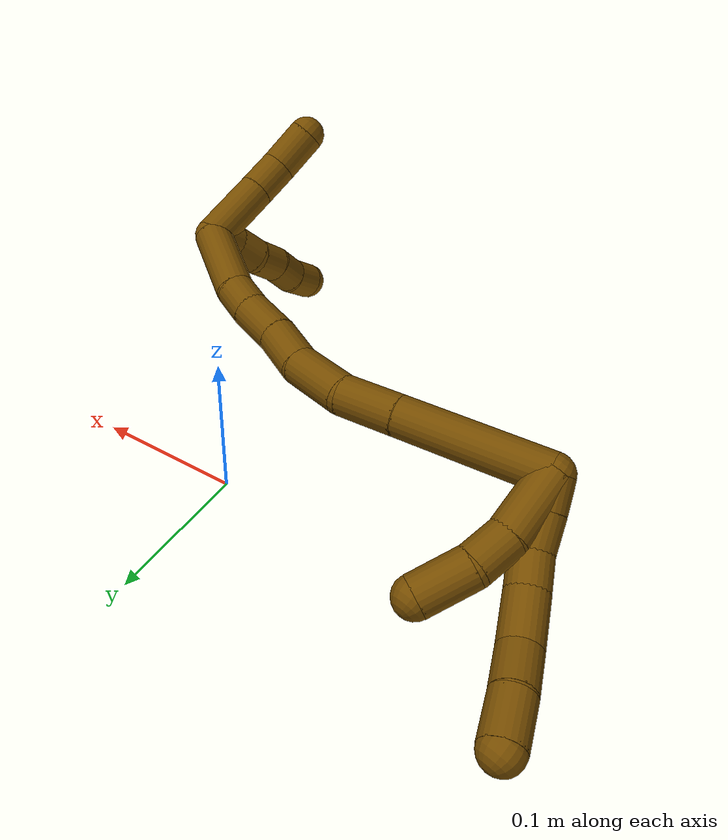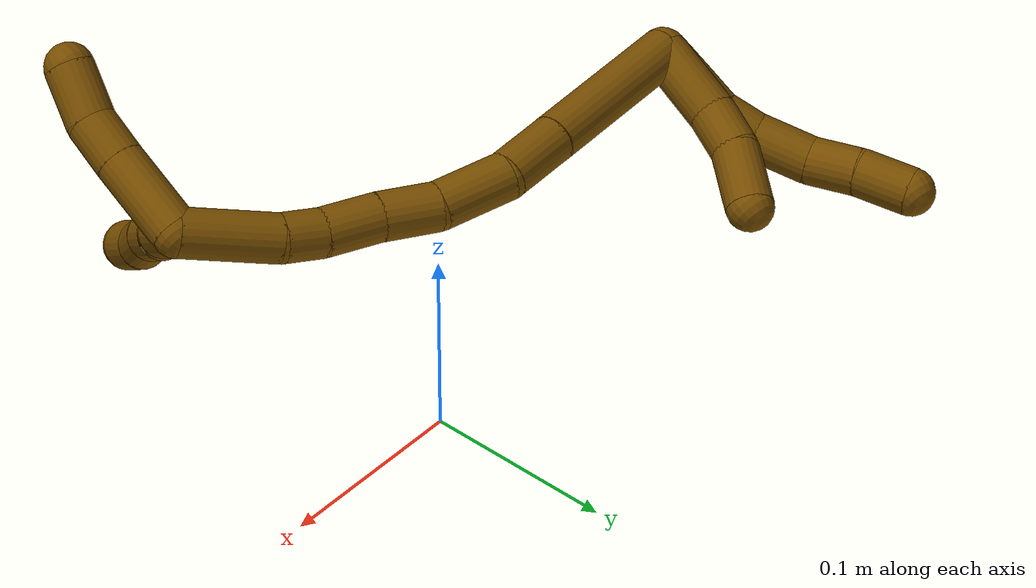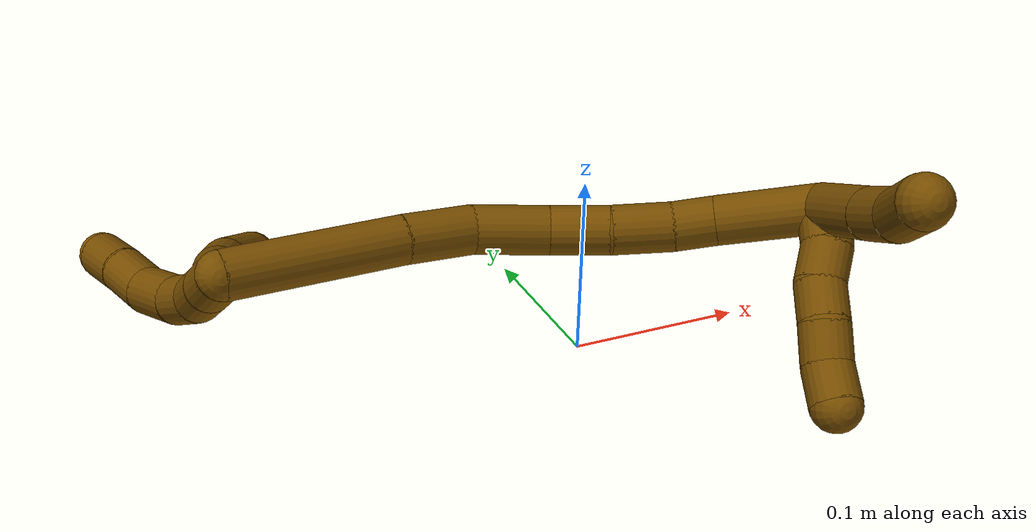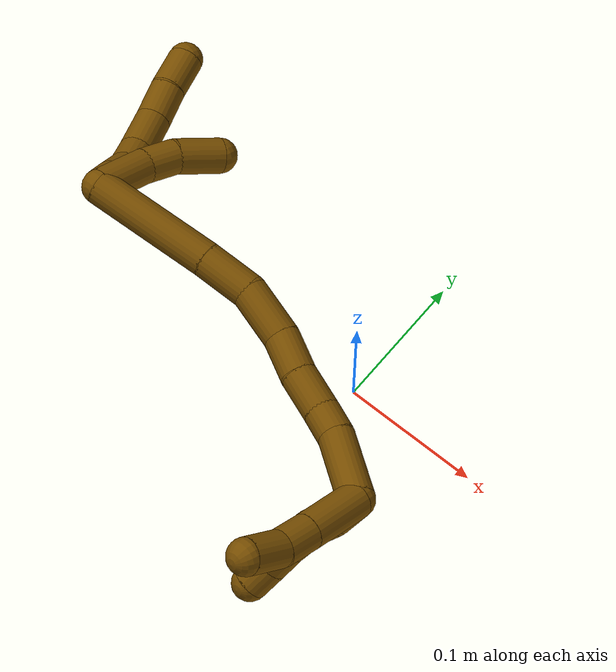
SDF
<sdf version="1.7">
 <world name="default">
  <model name="12">
   <static>0</static>
   <link name="12">
    <collision name="collision-cylinder-e_1_2_8">
     <pose>-0.004429 0.000549 -0.008977 -3.08046 -0.457596 2.88051</pose>
     <geometry><cylinder><radius>0.0125</radius><length>0.02005</length></cylinder></geometry>
     <surface>
      <friction><ode><mu>1.16</mu><mu2>1.16</mu2><slip1>0</slip1><slip2>0</slip2></ode></friction>
      <contact><ode><kp>1e+06</kp><kd>1</kd><max_vel>0</max_vel><min_depth>0.001</min_depth></ode></contact>
     </surface>
    </collision>
    <visual name="visual-cylinder-e_1_2_8">
     <pose>-0.004429 0.000549 -0.008977 -3.08046 -0.457596 2.88051</pose>
     <geometry><cylinder><radius>0.0125</radius><length>0.02005</length></cylinder></geometry>
     <material><ambient>0.466667 0.301961 0 1</ambient></material>
    </visual>
    <collision name="collision-cylinder-e_2_8_9">
     <pose>-0.013249 0.001636 -0.028068 -3.0885 -0.409055 2.88694</pose>
     <geometry><cylinder><radius>0.0125</radius><length>0.022079</length></cylinder></geometry>
     <surface>
      <friction><ode><mu>1.16</mu><mu2>1.16</mu2><slip1>0</slip1><slip2>0</slip2></ode></friction>
      <contact><ode><kp>1e+06</kp><kd>1</kd><max_vel>0</max_vel><min_depth>0.001</min_depth></ode></contact>
     </surface>
    </collision>
    <visual name="visual-cylinder-e_2_8_9">
     <pose>-0.013249 0.001636 -0.028068 -3.0885 -0.409055 2.88694</pose>
     <geometry><cylinder><radius>0.0125</radius><length>0.022079</length></cylinder></geometry>
     <material><ambient>0.466667 0.301961 0 1</ambient></material>
    </visual>
    <collision name="collision-cylinder-e_3_9_10">
     <pose>-0.021509 0.005725 -0.047657 -2.78299 -0.365257 1.58959</pose>
     <geometry><cylinder><radius>0.0125</radius><length>0.021665</length></cylinder></geometry>
     <surface>
      <friction><ode><mu>1.16</mu><mu2>1.16</mu2><slip1>0</slip1><slip2>0</slip2></ode></friction>
      <contact><ode><kp>1e+06</kp><kd>1</kd><max_vel>0</max_vel><min_depth>0.001</min_depth></ode></contact>
     </surface>
    </collision>
    <visual name="visual-cylinder-e_3_9_10">
     <pose>-0.021509 0.005725 -0.047657 -2.78299 -0.365257 1.58959</pose>
     <geometry><cylinder><radius>0.0125</radius><length>0.021665</length></cylinder></geometry>
     <material><ambient>0.466667 0.301961 0 1</ambient></material>
    </visual>
    <collision name="collision-cylinder-e_4_10_11">
     <pose>-0.028263 0.016621 -0.070745 -2.64679 -0.184368 0.701733</pose>
     <geometry><cylinder><radius>0.0125</radius><length>0.03147</length></cylinder></geometry>
     <surface>
      <friction><ode><mu>1.16</mu><mu2>1.16</mu2><slip1>0</slip1><slip2>0</slip2></ode></friction>
      <contact><ode><kp>1e+06</kp><kd>1</kd><max_vel>0</max_vel><min_depth>0.001</min_depth></ode></contact>
     </surface>
    </collision>
    <visual name="visual-cylinder-e_4_10_11">
     <pose>-0.028263 0.016621 -0.070745 -2.64679 -0.184368 0.701733</pose>
     <geometry><cylinder><radius>0.0125</radius><length>0.03147</length></cylinder></geometry>
     <material><ambient>0.466667 0.301961 0 1</ambient></material>
    </visual>
    <collision name="collision-cylinder-e_5_11_12">
     <pose>-0.030776 0.031904 -0.094938 -2.49795 0.028116 -0.084285</pose>
     <geometry><cylinder><radius>0.0125</radius><length>0.026463</length></cylinder></geometry>
     <surface>
      <friction><ode><mu>1.16</mu><mu2>1.16</mu2><slip1>0</slip1><slip2>0</slip2></ode></friction>
      <contact><ode><kp>1e+06</kp><kd>1</kd><max_vel>0</max_vel><min_depth>0.001</min_depth></ode></contact>
     </surface>
    </collision>
    <visual name="visual-cylinder-e_5_11_12">
     <pose>-0.030776 0.031904 -0.094938 -2.49795 0.028116 -0.084285</pose>
     <geometry><cylinder><radius>0.0125</radius><length>0.026463</length></cylinder></geometry>
     <material><ambient>0.466667 0.301961 0 1</ambient></material>
    </visual>
    <collision name="collision-cylinder-e_6_12_6">
     <pose>-0.030918 0.046963 -0.117718 -2.61323 -0.036351 0.134195</pose>
     <geometry><cylinder><radius>0.0125</radius><length>0.028273</length></cylinder></geometry>
     <surface>
      <friction><ode><mu>1.16</mu><mu2>1.16</mu2><slip1>0</slip1><slip2>0</slip2></ode></friction>
      <contact><ode><kp>1e+06</kp><kd>1</kd><max_vel>0</max_vel><min_depth>0.001</min_depth></ode></contact>
     </surface>
    </collision>
    <visual name="visual-cylinder-e_6_12_6">
     <pose>-0.030918 0.046963 -0.117718 -2.61323 -0.036351 0.134195</pose>
     <geometry><cylinder><radius>0.0125</radius><length>0.028273</length></cylinder></geometry>
     <material><ambient>0.466667 0.301961 0 1</ambient></material>
    </visual>
    <collision name="collision-cylinder-e_1_2_13">
     <pose>-0.000762 0.000207 -0.020813 -3.13163 -0.036616 2.61047</pose>
     <geometry><cylinder><radius>0.0125</radius><length>0.041655</length></cylinder></geometry>
     <surface>
      <friction><ode><mu>1.16</mu><mu2>1.16</mu2><slip1>0</slip1><slip2>0</slip2></ode></friction>
      <contact><ode><kp>1e+06</kp><kd>1</kd><max_vel>0</max_vel><min_depth>0.001</min_depth></ode></contact>
     </surface>
    </collision>
    <visual name="visual-cylinder-e_1_2_13">
     <pose>-0.000762 0.000207 -0.020813 -3.13163 -0.036616 2.61047</pose>
     <geometry><cylinder><radius>0.0125</radius><length>0.041655</length></cylinder></geometry>
     <material><ambient>0.466667 0.301961 0 1</ambient></material>
    </visual>
    <collision name="collision-cylinder-e_2_13_14">
     <pose>0.00061 -0.000657 -0.053723 3.05326 0.173976 2.20347</pose>
     <geometry><cylinder><radius>0.0125</radius><length>0.024663</length></cylinder></geometry>
     <surface>
      <friction><ode><mu>1.16</mu><mu2>1.16</mu2><slip1>0</slip1><slip2>0</slip2></ode></friction>
      <contact><ode><kp>1e+06</kp><kd>1</kd><max_vel>0</max_vel><min_depth>0.001</min_depth></ode></contact>
     </surface>
    </collision>
    <visual name="visual-cylinder-e_2_13_14">
     <pose>0.00061 -0.000657 -0.053723 3.05326 0.173976 2.20347</pose>
     <geometry><cylinder><radius>0.0125</radius><length>0.024663</length></cylinder></geometry>
     <material><ambient>0.466667 0.301961 0 1</ambient></material>
    </visual>
    <collision name="collision-cylinder-e_3_14_5">
     <pose>0.006905 -0.007397 -0.081124 2.78683 0.249668 1.22146</pose>
     <geometry><cylinder><radius>0.0125</radius><length>0.033682</length></cylinder></geometry>
     <surface>
      <friction><ode><mu>1.16</mu><mu2>1.16</mu2><slip1>0</slip1><slip2>0</slip2></ode></friction>
      <contact><ode><kp>1e+06</kp><kd>1</kd><max_vel>0</max_vel><min_depth>0.001</min_depth></ode></contact>
     </surface>
    </collision>
    <visual name="visual-cylinder-e_3_14_5">
     <pose>0.006905 -0.007397 -0.081124 2.78683 0.249668 1.22146</pose>
     <geometry><cylinder><radius>0.0125</radius><length>0.033682</length></cylinder></geometry>
     <material><ambient>0.466667 0.301961 0 1</ambient></material>
    </visual>
    <collision name="collision-cylinder-e_1_2_15">
     <pose>0.028977 -0.03366 -0.009904 1.85696 0.690319 0.895999</pose>
     <geometry><cylinder><radius>0.0125</radius><length>0.091012</length></cylinder></geometry>
     <surface>
      <friction><ode><mu>1.16</mu><mu2>1.16</mu2><slip1>0</slip1><slip2>0</slip2></ode></friction>
      <contact><ode><kp>1e+06</kp><kd>1</kd><max_vel>0</max_vel><min_depth>0.001</min_depth></ode></contact>
     </surface>
    </collision>
    <visual name="visual-cylinder-e_1_2_15">
     <pose>0.028977 -0.03366 -0.009904 1.85696 0.690319 0.895999</pose>
     <geometry><cylinder><radius>0.0125</radius><length>0.091012</length></cylinder></geometry>
     <material><ambient>0.466667 0.301961 0 1</ambient></material>
    </visual>
    <collision name="collision-cylinder-e_2_15_16">
     <pose>0.068964 -0.081315 -0.023513 1.82959 0.650158 0.82544</pose>
     <geometry><cylinder><radius>0.0125</radius><length>0.036373</length></cylinder></geometry>
     <surface>
      <friction><ode><mu>1.16</mu><mu2>1.16</mu2><slip1>0</slip1><slip2>0</slip2></ode></friction>
      <contact><ode><kp>1e+06</kp><kd>1</kd><max_vel>0</max_vel><min_depth>0.001</min_depth></ode></contact>
     </surface>
    </collision>
    <visual name="visual-cylinder-e_2_15_16">
     <pose>0.068964 -0.081315 -0.023513 1.82959 0.650158 0.82544</pose>
     <geometry><cylinder><radius>0.0125</radius><length>0.036373</length></cylinder></geometry>
     <material><ambient>0.466667 0.301961 0 1</ambient></material>
    </visual>
    <collision name="collision-cylinder-e_3_16_17">
     <pose>0.089822 -0.112156 -0.025837 1.48899 0.527574 0.487779</pose>
     <geometry><cylinder><radius>0.0125</radius><length>0.039128</length></cylinder></geometry>
     <surface>
      <friction><ode><mu>1.16</mu><mu2>1.16</mu2><slip1>0</slip1><slip2>0</slip2></ode></friction>
      <contact><ode><kp>1e+06</kp><kd>1</kd><max_vel>0</max_vel><min_depth>0.001</min_depth></ode></contact>
     </surface>
    </collision>
    <visual name="visual-cylinder-e_3_16_17">
     <pose>0.089822 -0.112156 -0.025837 1.48899 0.527574 0.487779</pose>
     <geometry><cylinder><radius>0.0125</radius><length>0.039128</length></cylinder></geometry>
     <material><ambient>0.466667 0.301961 0 1</ambient></material>
    </visual>
    <collision name="collision-cylinder-e_4_17_18">
     <pose>0.107325 -0.141313 -0.019795 1.20885 0.526759 0.36824</pose>
     <geometry><cylinder><radius>0.0125</radius><length>0.030451</length></cylinder></geometry>
     <surface>
      <friction><ode><mu>1.16</mu><mu2>1.16</mu2><slip1>0</slip1><slip2>0</slip2></ode></friction>
      <contact><ode><kp>1e+06</kp><kd>1</kd><max_vel>0</max_vel><min_depth>0.001</min_depth></ode></contact>
     </surface>
    </collision>
    <visual name="visual-cylinder-e_4_17_18">
     <pose>0.107325 -0.141313 -0.019795 1.20885 0.526759 0.36824</pose>
     <geometry><cylinder><radius>0.0125</radius><length>0.030451</length></cylinder></geometry>
     <material><ambient>0.466667 0.301961 0 1</ambient></material>
    </visual>
    <collision name="collision-cylinder-e_5_18_19">
     <pose>0.123487 -0.16595 -0.012276 1.343 0.591835 0.475397</pose>
     <geometry><cylinder><radius>0.0125</radius><length>0.030498</length></cylinder></geometry>
     <surface>
      <friction><ode><mu>1.16</mu><mu2>1.16</mu2><slip1>0</slip1><slip2>0</slip2></ode></friction>
      <contact><ode><kp>1e+06</kp><kd>1</kd><max_vel>0</max_vel><min_depth>0.001</min_depth></ode></contact>
     </surface>
    </collision>
    <visual name="visual-cylinder-e_5_18_19">
     <pose>0.123487 -0.16595 -0.012276 1.343 0.591835 0.475397</pose>
     <geometry><cylinder><radius>0.0125</radius><length>0.030498</length></cylinder></geometry>
     <material><ambient>0.466667 0.301961 0 1</ambient></material>
    </visual>
    <collision name="collision-cylinder-e_6_19_20">
     <pose>0.13865 -0.186146 -0.006405 1.20499 0.668594 0.469003</pose>
     <geometry><cylinder><radius>0.0125</radius><length>0.021473</length></cylinder></geometry>
     <surface>
      <friction><ode><mu>1.16</mu><mu2>1.16</mu2><slip1>0</slip1><slip2>0</slip2></ode></friction>
      <contact><ode><kp>1e+06</kp><kd>1</kd><max_vel>0</max_vel><min_depth>0.001</min_depth></ode></contact>
     </surface>
    </collision>
    <visual name="visual-cylinder-e_6_19_20">
     <pose>0.13865 -0.186146 -0.006405 1.20499 0.668594 0.469003</pose>
     <geometry><cylinder><radius>0.0125</radius><length>0.021473</length></cylinder></geometry>
     <material><ambient>0.466667 0.301961 0 1</ambient></material>
    </visual>
    <collision name="collision-cylinder-e_7_20_1">
     <pose>0.159629 -0.211225 0.008876 0.951603 0.595639 0.313734</pose>
     <geometry><cylinder><radius>0.0125</radius><length>0.051064</length></cylinder></geometry>
     <surface>
      <friction><ode><mu>1.16</mu><mu2>1.16</mu2><slip1>0</slip1><slip2>0</slip2></ode></friction>
      <contact><ode><kp>1e+06</kp><kd>1</kd><max_vel>0</max_vel><min_depth>0.001</min_depth></ode></contact>
     </surface>
    </collision>
    <visual name="visual-cylinder-e_7_20_1">
     <pose>0.159629 -0.211225 0.008876 0.951603 0.595639 0.313734</pose>
     <geometry><cylinder><radius>0.0125</radius><length>0.051064</length></cylinder></geometry>
     <material><ambient>0.466667 0.301961 0 1</ambient></material>
    </visual>
    <collision name="collision-cylinder-e_1_1_21">
     <pose>0.174101 -0.229453 0.043895 0.044636 0.006448 0.000144</pose>
     <geometry><cylinder><radius>0.0125</radius><length>0.045553</length></cylinder></geometry>
     <surface>
      <friction><ode><mu>1.16</mu><mu2>1.16</mu2><slip1>0</slip1><slip2>0</slip2></ode></friction>
      <contact><ode><kp>1e+06</kp><kd>1</kd><max_vel>0</max_vel><min_depth>0.001</min_depth></ode></contact>
     </surface>
    </collision>
    <visual name="visual-cylinder-e_1_1_21">
     <pose>0.174101 -0.229453 0.043895 0.044636 0.006448 0.000144</pose>
     <geometry><cylinder><radius>0.0125</radius><length>0.045553</length></cylinder></geometry>
     <material><ambient>0.466667 0.301961 0 1</ambient></material>
    </visual>
    <collision name="collision-cylinder-e_2_21_22">
     <pose>0.174539 -0.230563 0.079121 0.007542 0.023332 8.8e-05</pose>
     <geometry><cylinder><radius>0.0125</radius><length>0.024952</length></cylinder></geometry>
     <surface>
      <friction><ode><mu>1.16</mu><mu2>1.16</mu2><slip1>0</slip1><slip2>0</slip2></ode></friction>
      <contact><ode><kp>1e+06</kp><kd>1</kd><max_vel>0</max_vel><min_depth>0.001</min_depth></ode></contact>
     </surface>
    </collision>
    <visual name="visual-cylinder-e_2_21_22">
     <pose>0.174539 -0.230563 0.079121 0.007542 0.023332 8.8e-05</pose>
     <geometry><cylinder><radius>0.0125</radius><length>0.024952</length></cylinder></geometry>
     <material><ambient>0.466667 0.301961 0 1</ambient></material>
    </visual>
    <collision name="collision-cylinder-e_3_22_4">
     <pose>0.176403 -0.226932 0.105775 -0.25684 0.106899 -0.013817</pose>
     <geometry><cylinder><radius>0.0125</radius><length>0.029495</length></cylinder></geometry>
     <surface>
      <friction><ode><mu>1.16</mu><mu2>1.16</mu2><slip1>0</slip1><slip2>0</slip2></ode></friction>
      <contact><ode><kp>1e+06</kp><kd>1</kd><max_vel>0</max_vel><min_depth>0.001</min_depth></ode></contact>
     </surface>
    </collision>
    <visual name="visual-cylinder-e_3_22_4">
     <pose>0.176403 -0.226932 0.105775 -0.25684 0.106899 -0.013817</pose>
     <geometry><cylinder><radius>0.0125</radius><length>0.029495</length></cylinder></geometry>
     <material><ambient>0.466667 0.301961 0 1</ambient></material>
    </visual>
    <collision name="collision-cylinder-e_1_1_23">
     <pose>0.166233 -0.232235 0.026236 0.640779 -0.882149 -0.310776</pose>
     <geometry><cylinder><radius>0.0125</radius><length>0.02</length></cylinder></geometry>
     <surface>
      <friction><ode><mu>1.16</mu><mu2>1.16</mu2><slip1>0</slip1><slip2>0</slip2></ode></friction>
      <contact><ode><kp>1e+06</kp><kd>1</kd><max_vel>0</max_vel><min_depth>0.001</min_depth></ode></contact>
     </surface>
    </collision>
    <visual name="visual-cylinder-e_1_1_23">
     <pose>0.166233 -0.232235 0.026236 0.640779 -0.882149 -0.310776</pose>
     <geometry><cylinder><radius>0.0125</radius><length>0.02</length></cylinder></geometry>
     <material><ambient>0.466667 0.301961 0 1</ambient></material>
    </visual>
    <collision name="collision-cylinder-e_2_23_24">
     <pose>0.149213 -0.237976 0.034456 0.555796 -1.19402 -0.383085</pose>
     <geometry><cylinder><radius>0.0125</radius><length>0.02</length></cylinder></geometry>
     <surface>
      <friction><ode><mu>1.16</mu><mu2>1.16</mu2><slip1>0</slip1><slip2>0</slip2></ode></friction>
      <contact><ode><kp>1e+06</kp><kd>1</kd><max_vel>0</max_vel><min_depth>0.001</min_depth></ode></contact>
     </surface>
    </collision>
    <visual name="visual-cylinder-e_2_23_24">
     <pose>0.149213 -0.237976 0.034456 0.555796 -1.19402 -0.383085</pose>
     <geometry><cylinder><radius>0.0125</radius><length>0.02</length></cylinder></geometry>
     <material><ambient>0.466667 0.301961 0 1</ambient></material>
    </visual>
    <collision name="collision-cylinder-e_3_24_25">
     <pose>0.131969 -0.243686 0.042342 0.669654 -0.918292 -0.340686</pose>
     <geometry><cylinder><radius>0.0125</radius><length>0.02</length></cylinder></geometry>
     <surface>
      <friction><ode><mu>1.16</mu><mu2>1.16</mu2><slip1>0</slip1><slip2>0</slip2></ode></friction>
      <contact><ode><kp>1e+06</kp><kd>1</kd><max_vel>0</max_vel><min_depth>0.001</min_depth></ode></contact>
     </surface>
    </collision>
    <visual name="visual-cylinder-e_3_24_25">
     <pose>0.131969 -0.243686 0.042342 0.669654 -0.918292 -0.340686</pose>
     <geometry><cylinder><radius>0.0125</radius><length>0.02</length></cylinder></geometry>
     <material><ambient>0.466667 0.301961 0 1</ambient></material>
    </visual>
    <collision name="collision-cylinder-e_4_25_26">
     <pose>0.115663 -0.25198 0.050205 0.969798 -0.990071 -0.554232</pose>
     <geometry><cylinder><radius>0.0125</radius><length>0.02</length></cylinder></geometry>
     <surface>
      <friction><ode><mu>1.16</mu><mu2>1.16</mu2><slip1>0</slip1><slip2>0</slip2></ode></friction>
      <contact><ode><kp>1e+06</kp><kd>1</kd><max_vel>0</max_vel><min_depth>0.001</min_depth></ode></contact>
     </surface>
    </collision>
    <visual name="visual-cylinder-e_4_25_26">
     <pose>0.115663 -0.25198 0.050205 0.969798 -0.990071 -0.554232</pose>
     <geometry><cylinder><radius>0.0125</radius><length>0.02</length></cylinder></geometry>
     <material><ambient>0.466667 0.301961 0 1</ambient></material>
    </visual>
    <collision name="collision-cylinder-e_5_26_3">
     <pose>0.099955 -0.260872 0.058498 0.69947 -0.825263 -0.316657</pose>
     <geometry><cylinder><radius>0.0125</radius><length>0.02</length></cylinder></geometry>
     <surface>
      <friction><ode><mu>1.16</mu><mu2>1.16</mu2><slip1>0</slip1><slip2>0</slip2></ode></friction>
      <contact><ode><kp>1e+06</kp><kd>1</kd><max_vel>0</max_vel><min_depth>0.001</min_depth></ode></contact>
     </surface>
    </collision>
    <visual name="visual-cylinder-e_5_26_3">
     <pose>0.099955 -0.260872 0.058498 0.69947 -0.825263 -0.316657</pose>
     <geometry><cylinder><radius>0.0125</radius><length>0.02</length></cylinder></geometry>
     <material><ambient>0.466667 0.301961 0 1</ambient></material>
    </visual>
    <collision name="collision-sphere-3">
     <pose>0.092607 -0.265239 0.063689 0 -0 0</pose>
     <geometry><sphere><radius>0.0125</radius></sphere></geometry>
     <surface>
      <friction><ode><mu>1.16</mu><mu2>1.16</mu2><slip1>0</slip1><slip2>0</slip2></ode></friction>
      <contact><ode><kp>1e+06</kp><kd>1</kd><max_vel>0</max_vel><min_depth>0.001</min_depth></ode></contact>
     </surface>
    </collision>
    <visual name="visual-sphere-3">
     <pose>0.092607 -0.265239 0.063689 0 -0 0</pose>
     <geometry><sphere><radius>0.0125</radius></sphere></geometry>
     <material><ambient>0.466667 0.301961 0 1</ambient></material>
    </visual>
    <collision name="collision-sphere-26">
     <pose>0.107302 -0.256505 0.053307 0 -0 0</pose>
     <geometry><sphere><radius>0.0125</radius></sphere></geometry>
     <surface>
      <friction><ode><mu>1.16</mu><mu2>1.16</mu2><slip1>0</slip1><slip2>0</slip2></ode></friction>
      <contact><ode><kp>1e+06</kp><kd>1</kd><max_vel>0</max_vel><min_depth>0.001</min_depth></ode></contact>
     </surface>
    </collision>
    <visual name="visual-sphere-26">
     <pose>0.107302 -0.256505 0.053307 0 -0 0</pose>
     <geometry><sphere><radius>0.0125</radius></sphere></geometry>
     <material><ambient>0.466667 0.301961 0 1</ambient></material>
    </visual>
    <collision name="collision-sphere-25">
     <pose>0.124023 -0.247455 0.047103 0 -0 0</pose>
     <geometry><sphere><radius>0.0125</radius></sphere></geometry>
     <surface>
      <friction><ode><mu>1.16</mu><mu2>1.16</mu2><slip1>0</slip1><slip2>0</slip2></ode></friction>
      <contact><ode><kp>1e+06</kp><kd>1</kd><max_vel>0</max_vel><min_depth>0.001</min_depth></ode></contact>
     </surface>
    </collision>
    <visual name="visual-sphere-25">
     <pose>0.124023 -0.247455 0.047103 0 -0 0</pose>
     <geometry><sphere><radius>0.0125</radius></sphere></geometry>
     <material><ambient>0.466667 0.301961 0 1</ambient></material>
    </visual>
    <collision name="collision-sphere-24">
     <pose>0.139915 -0.239917 0.037582 0 -0 0</pose>
     <geometry><sphere><radius>0.0125</radius></sphere></geometry>
     <surface>
      <friction><ode><mu>1.16</mu><mu2>1.16</mu2><slip1>0</slip1><slip2>0</slip2></ode></friction>
      <contact><ode><kp>1e+06</kp><kd>1</kd><max_vel>0</max_vel><min_depth>0.001</min_depth></ode></contact>
     </surface>
    </collision>
    <visual name="visual-sphere-24">
     <pose>0.139915 -0.239917 0.037582 0 -0 0</pose>
     <geometry><sphere><radius>0.0125</radius></sphere></geometry>
     <material><ambient>0.466667 0.301961 0 1</ambient></material>
    </visual>
    <collision name="collision-sphere-23">
     <pose>0.158512 -0.236035 0.031331 0 -0 0</pose>
     <geometry><sphere><radius>0.0125</radius></sphere></geometry>
     <surface>
      <friction><ode><mu>1.16</mu><mu2>1.16</mu2><slip1>0</slip1><slip2>0</slip2></ode></friction>
      <contact><ode><kp>1e+06</kp><kd>1</kd><max_vel>0</max_vel><min_depth>0.001</min_depth></ode></contact>
     </surface>
    </collision>
    <visual name="visual-sphere-23">
     <pose>0.158512 -0.236035 0.031331 0 -0 0</pose>
     <geometry><sphere><radius>0.0125</radius></sphere></geometry>
     <material><ambient>0.466667 0.301961 0 1</ambient></material>
    </visual>
    <collision name="collision-sphere-4">
     <pose>0.177977 -0.223207 0.119958 0 -0 0</pose>
     <geometry><sphere><radius>0.0125</radius></sphere></geometry>
     <surface>
      <friction><ode><mu>1.16</mu><mu2>1.16</mu2><slip1>0</slip1><slip2>0</slip2></ode></friction>
      <contact><ode><kp>1e+06</kp><kd>1</kd><max_vel>0</max_vel><min_depth>0.001</min_depth></ode></contact>
     </surface>
    </collision>
    <visual name="visual-sphere-4">
     <pose>0.177977 -0.223207 0.119958 0 -0 0</pose>
     <geometry><sphere><radius>0.0125</radius></sphere></geometry>
     <material><ambient>0.466667 0.301961 0 1</ambient></material>
    </visual>
    <collision name="collision-sphere-22">
     <pose>0.17483 -0.230657 0.091593 0 -0 0</pose>
     <geometry><sphere><radius>0.0125</radius></sphere></geometry>
     <surface>
      <friction><ode><mu>1.16</mu><mu2>1.16</mu2><slip1>0</slip1><slip2>0</slip2></ode></friction>
      <contact><ode><kp>1e+06</kp><kd>1</kd><max_vel>0</max_vel><min_depth>0.001</min_depth></ode></contact>
     </surface>
    </collision>
    <visual name="visual-sphere-22">
     <pose>0.17483 -0.230657 0.091593 0 -0 0</pose>
     <geometry><sphere><radius>0.0125</radius></sphere></geometry>
     <material><ambient>0.466667 0.301961 0 1</ambient></material>
    </visual>
    <collision name="collision-sphere-21">
     <pose>0.174248 -0.230469 0.066648 0 -0 0</pose>
     <geometry><sphere><radius>0.0125</radius></sphere></geometry>
     <surface>
      <friction><ode><mu>1.16</mu><mu2>1.16</mu2><slip1>0</slip1><slip2>0</slip2></ode></friction>
      <contact><ode><kp>1e+06</kp><kd>1</kd><max_vel>0</max_vel><min_depth>0.001</min_depth></ode></contact>
     </surface>
    </collision>
    <visual name="visual-sphere-21">
     <pose>0.174248 -0.230469 0.066648 0 -0 0</pose>
     <geometry><sphere><radius>0.0125</radius></sphere></geometry>
     <material><ambient>0.466667 0.301961 0 1</ambient></material>
    </visual>
    <collision name="collision-sphere-1">
     <pose>0.173954 -0.228436 0.021142 0 -0 0</pose>
     <geometry><sphere><radius>0.0125</radius></sphere></geometry>
     <surface>
      <friction><ode><mu>1.16</mu><mu2>1.16</mu2><slip1>0</slip1><slip2>0</slip2></ode></friction>
      <contact><ode><kp>1e+06</kp><kd>1</kd><max_vel>0</max_vel><min_depth>0.001</min_depth></ode></contact>
     </surface>
    </collision>
    <visual name="visual-sphere-1">
     <pose>0.173954 -0.228436 0.021142 0 -0 0</pose>
     <geometry><sphere><radius>0.0125</radius></sphere></geometry>
     <material><ambient>0.466667 0.301961 0 1</ambient></material>
    </visual>
    <collision name="collision-sphere-12">
     <pose>-0.030404 0.039841 -0.105517 0 -0 0</pose>
     <geometry><sphere><radius>0.0125</radius></sphere></geometry>
     <surface>
      <friction><ode><mu>1.16</mu><mu2>1.16</mu2><slip1>0</slip1><slip2>0</slip2></ode></friction>
      <contact><ode><kp>1e+06</kp><kd>1</kd><max_vel>0</max_vel><min_depth>0.001</min_depth></ode></contact>
     </surface>
    </collision>
    <visual name="visual-sphere-12">
     <pose>-0.030404 0.039841 -0.105517 0 -0 0</pose>
     <geometry><sphere><radius>0.0125</radius></sphere></geometry>
     <material><ambient>0.466667 0.301961 0 1</ambient></material>
    </visual>
    <collision name="collision-sphere-11">
     <pose>-0.031148 0.023967 -0.084358 0 -0 0</pose>
     <geometry><sphere><radius>0.0125</radius></sphere></geometry>
     <surface>
      <friction><ode><mu>1.16</mu><mu2>1.16</mu2><slip1>0</slip1><slip2>0</slip2></ode></friction>
      <contact><ode><kp>1e+06</kp><kd>1</kd><max_vel>0</max_vel><min_depth>0.001</min_depth></ode></contact>
     </surface>
    </collision>
    <visual name="visual-sphere-11">
     <pose>-0.031148 0.023967 -0.084358 0 -0 0</pose>
     <geometry><sphere><radius>0.0125</radius></sphere></geometry>
     <material><ambient>0.466667 0.301961 0 1</ambient></material>
    </visual>
    <collision name="collision-sphere-10">
     <pose>-0.025378 0.009276 -0.057131 0 -0 0</pose>
     <geometry><sphere><radius>0.0125</radius></sphere></geometry>
     <surface>
      <friction><ode><mu>1.16</mu><mu2>1.16</mu2><slip1>0</slip1><slip2>0</slip2></ode></friction>
      <contact><ode><kp>1e+06</kp><kd>1</kd><max_vel>0</max_vel><min_depth>0.001</min_depth></ode></contact>
     </surface>
    </collision>
    <visual name="visual-sphere-10">
     <pose>-0.025378 0.009276 -0.057131 0 -0 0</pose>
     <geometry><sphere><radius>0.0125</radius></sphere></geometry>
     <material><ambient>0.466667 0.301961 0 1</ambient></material>
    </visual>
    <collision name="collision-sphere-9">
     <pose>-0.01764 0.002174 -0.038183 0 -0 0</pose>
     <geometry><sphere><radius>0.0125</radius></sphere></geometry>
     <surface>
      <friction><ode><mu>1.16</mu><mu2>1.16</mu2><slip1>0</slip1><slip2>0</slip2></ode></friction>
      <contact><ode><kp>1e+06</kp><kd>1</kd><max_vel>0</max_vel><min_depth>0.001</min_depth></ode></contact>
     </surface>
    </collision>
    <visual name="visual-sphere-9">
     <pose>-0.01764 0.002174 -0.038183 0 -0 0</pose>
     <geometry><sphere><radius>0.0125</radius></sphere></geometry>
     <material><ambient>0.466667 0.301961 0 1</ambient></material>
    </visual>
    <collision name="collision-sphere-2">
     <geometry><sphere><radius>0.0125</radius></sphere></geometry>
     <surface>
      <friction><ode><mu>1.16</mu><mu2>1.16</mu2><slip1>0</slip1><slip2>0</slip2></ode></friction>
      <contact><ode><kp>1e+06</kp><kd>1</kd><max_vel>0</max_vel><min_depth>0.001</min_depth></ode></contact>
     </surface>
    </collision>
    <visual name="visual-sphere-2">
     <geometry><sphere><radius>0.0125</radius></sphere></geometry>
     <material><ambient>0.466667 0.301961 0 1</ambient></material>
    </visual>
    <collision name="collision-sphere-19">
     <pose>0.131994 -0.178279 -0.009418 0 -0 0</pose>
     <geometry><sphere><radius>0.0125</radius></sphere></geometry>
     <surface>
      <friction><ode><mu>1.16</mu><mu2>1.16</mu2><slip1>0</slip1><slip2>0</slip2></ode></friction>
      <contact><ode><kp>1e+06</kp><kd>1</kd><max_vel>0</max_vel><min_depth>0.001</min_depth></ode></contact>
     </surface>
    </collision>
    <visual name="visual-sphere-19">
     <pose>0.131994 -0.178279 -0.009418 0 -0 0</pose>
     <geometry><sphere><radius>0.0125</radius></sphere></geometry>
     <material><ambient>0.466667 0.301961 0 1</ambient></material>
    </visual>
    <collision name="collision-sphere-8">
     <pose>-0.008858 0.001099 -0.017954 0 -0 0</pose>
     <geometry><sphere><radius>0.0125</radius></sphere></geometry>
     <surface>
      <friction><ode><mu>1.16</mu><mu2>1.16</mu2><slip1>0</slip1><slip2>0</slip2></ode></friction>
      <contact><ode><kp>1e+06</kp><kd>1</kd><max_vel>0</max_vel><min_depth>0.001</min_depth></ode></contact>
     </surface>
    </collision>
    <visual name="visual-sphere-8">
     <pose>-0.008858 0.001099 -0.017954 0 -0 0</pose>
     <geometry><sphere><radius>0.0125</radius></sphere></geometry>
     <material><ambient>0.466667 0.301961 0 1</ambient></material>
    </visual>
    <collision name="collision-sphere-6">
     <pose>-0.031431 0.054084 -0.129918 0 -0 0</pose>
     <geometry><sphere><radius>0.0125</radius></sphere></geometry>
     <surface>
      <friction><ode><mu>1.16</mu><mu2>1.16</mu2><slip1>0</slip1><slip2>0</slip2></ode></friction>
      <contact><ode><kp>1e+06</kp><kd>1</kd><max_vel>0</max_vel><min_depth>0.001</min_depth></ode></contact>
     </surface>
    </collision>
    <visual name="visual-sphere-6">
     <pose>-0.031431 0.054084 -0.129918 0 -0 0</pose>
     <geometry><sphere><radius>0.0125</radius></sphere></geometry>
     <material><ambient>0.466667 0.301961 0 1</ambient></material>
    </visual>
    <collision name="collision-sphere-13">
     <pose>-0.001525 0.000415 -0.041625 0 -0 0</pose>
     <geometry><sphere><radius>0.0125</radius></sphere></geometry>
     <surface>
      <friction><ode><mu>1.16</mu><mu2>1.16</mu2><slip1>0</slip1><slip2>0</slip2></ode></friction>
      <contact><ode><kp>1e+06</kp><kd>1</kd><max_vel>0</max_vel><min_depth>0.001</min_depth></ode></contact>
     </surface>
    </collision>
    <visual name="visual-sphere-13">
     <pose>-0.001525 0.000415 -0.041625 0 -0 0</pose>
     <geometry><sphere><radius>0.0125</radius></sphere></geometry>
     <material><ambient>0.466667 0.301961 0 1</ambient></material>
    </visual>
    <collision name="collision-sphere-14">
     <pose>0.002744 -0.001728 -0.065821 0 -0 0</pose>
     <geometry><sphere><radius>0.0125</radius></sphere></geometry>
     <surface>
      <friction><ode><mu>1.16</mu><mu2>1.16</mu2><slip1>0</slip1><slip2>0</slip2></ode></friction>
      <contact><ode><kp>1e+06</kp><kd>1</kd><max_vel>0</max_vel><min_depth>0.001</min_depth></ode></contact>
     </surface>
    </collision>
    <visual name="visual-sphere-14">
     <pose>0.002744 -0.001728 -0.065821 0 -0 0</pose>
     <geometry><sphere><radius>0.0125</radius></sphere></geometry>
     <material><ambient>0.466667 0.301961 0 1</ambient></material>
    </visual>
    <collision name="collision-sphere-5">
     <pose>0.011066 -0.013066 -0.096426 0 -0 0</pose>
     <geometry><sphere><radius>0.0125</radius></sphere></geometry>
     <surface>
      <friction><ode><mu>1.16</mu><mu2>1.16</mu2><slip1>0</slip1><slip2>0</slip2></ode></friction>
      <contact><ode><kp>1e+06</kp><kd>1</kd><max_vel>0</max_vel><min_depth>0.001</min_depth></ode></contact>
     </surface>
    </collision>
    <visual name="visual-sphere-5">
     <pose>0.011066 -0.013066 -0.096426 0 -0 0</pose>
     <geometry><sphere><radius>0.0125</radius></sphere></geometry>
     <material><ambient>0.466667 0.301961 0 1</ambient></material>
    </visual>
    <collision name="collision-sphere-15">
     <pose>0.057955 -0.06732 -0.019809 0 -0 0</pose>
     <geometry><sphere><radius>0.0125</radius></sphere></geometry>
     <surface>
      <friction><ode><mu>1.16</mu><mu2>1.16</mu2><slip1>0</slip1><slip2>0</slip2></ode></friction>
      <contact><ode><kp>1e+06</kp><kd>1</kd><max_vel>0</max_vel><min_depth>0.001</min_depth></ode></contact>
     </surface>
    </collision>
    <visual name="visual-sphere-15">
     <pose>0.057955 -0.06732 -0.019809 0 -0 0</pose>
     <geometry><sphere><radius>0.0125</radius></sphere></geometry>
     <material><ambient>0.466667 0.301961 0 1</ambient></material>
    </visual>
    <collision name="collision-sphere-16">
     <pose>0.079972 -0.095309 -0.027218 0 -0 0</pose>
     <geometry><sphere><radius>0.0125</radius></sphere></geometry>
     <surface>
      <friction><ode><mu>1.16</mu><mu2>1.16</mu2><slip1>0</slip1><slip2>0</slip2></ode></friction>
      <contact><ode><kp>1e+06</kp><kd>1</kd><max_vel>0</max_vel><min_depth>0.001</min_depth></ode></contact>
     </surface>
    </collision>
    <visual name="visual-sphere-16">
     <pose>0.079972 -0.095309 -0.027218 0 -0 0</pose>
     <geometry><sphere><radius>0.0125</radius></sphere></geometry>
     <material><ambient>0.466667 0.301961 0 1</ambient></material>
    </visual>
    <collision name="collision-sphere-17">
     <pose>0.099671 -0.129004 -0.024455 0 -0 0</pose>
     <geometry><sphere><radius>0.0125</radius></sphere></geometry>
     <surface>
      <friction><ode><mu>1.16</mu><mu2>1.16</mu2><slip1>0</slip1><slip2>0</slip2></ode></friction>
      <contact><ode><kp>1e+06</kp><kd>1</kd><max_vel>0</max_vel><min_depth>0.001</min_depth></ode></contact>
     </surface>
    </collision>
    <visual name="visual-sphere-17">
     <pose>0.099671 -0.129004 -0.024455 0 -0 0</pose>
     <geometry><sphere><radius>0.0125</radius></sphere></geometry>
     <material><ambient>0.466667 0.301961 0 1</ambient></material>
    </visual>
    <collision name="collision-sphere-18">
     <pose>0.11498 -0.153622 -0.015134 0 -0 0</pose>
     <geometry><sphere><radius>0.0125</radius></sphere></geometry>
     <surface>
      <friction><ode><mu>1.16</mu><mu2>1.16</mu2><slip1>0</slip1><slip2>0</slip2></ode></friction>
      <contact><ode><kp>1e+06</kp><kd>1</kd><max_vel>0</max_vel><min_depth>0.001</min_depth></ode></contact>
     </surface>
    </collision>
    <visual name="visual-sphere-18">
     <pose>0.11498 -0.153622 -0.015134 0 -0 0</pose>
     <geometry><sphere><radius>0.0125</radius></sphere></geometry>
     <material><ambient>0.466667 0.301961 0 1</ambient></material>
    </visual>
    <collision name="collision-sphere-20">
     <pose>0.145305 -0.194014 -0.003391 0 -0 0</pose>
     <geometry><sphere><radius>0.0125</radius></sphere></geometry>
     <surface>
      <friction><ode><mu>1.16</mu><mu2>1.16</mu2><slip1>0</slip1><slip2>0</slip2></ode></friction>
      <contact><ode><kp>1e+06</kp><kd>1</kd><max_vel>0</max_vel><min_depth>0.001</min_depth></ode></contact>
     </surface>
    </collision>
    <visual name="visual-sphere-20">
     <pose>0.145305 -0.194014 -0.003391 0 -0 0</pose>
     <geometry><sphere><radius>0.0125</radius></sphere></geometry>
     <material><ambient>0.466667 0.301961 0 1</ambient></material>
    </visual>
    <inertial>
     <pose>0.072484 -0.105841 -0.009232 0 -0 0</pose>
     <mass>0.75</mass>
     <inertia><ixx>0.000146</ixx><ixy>0</ixy><ixz>0</ixz><iyy>0.00011</iyy><iyz>0</iyz><izz>1.4e-05</izz></inertia>
    </inertial>
   </link>
   <pose>-0.201239 -0.026781 0.100007 0.941867 -0.841984 0.307779</pose>
  </model>
 </world>
</sdf>
